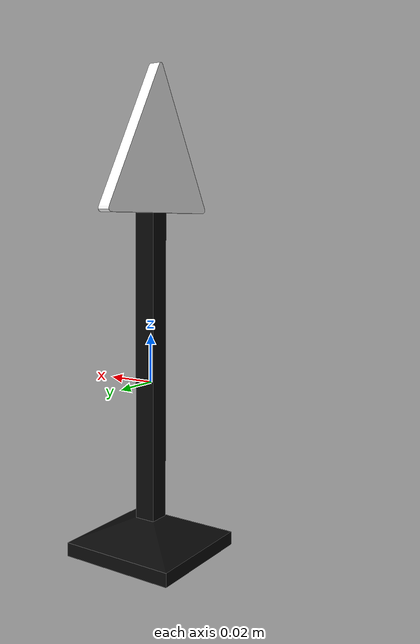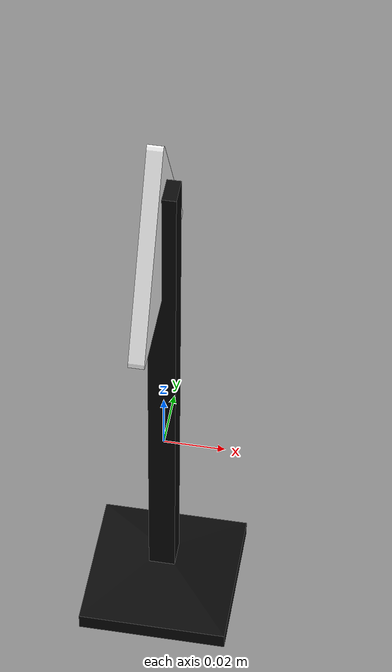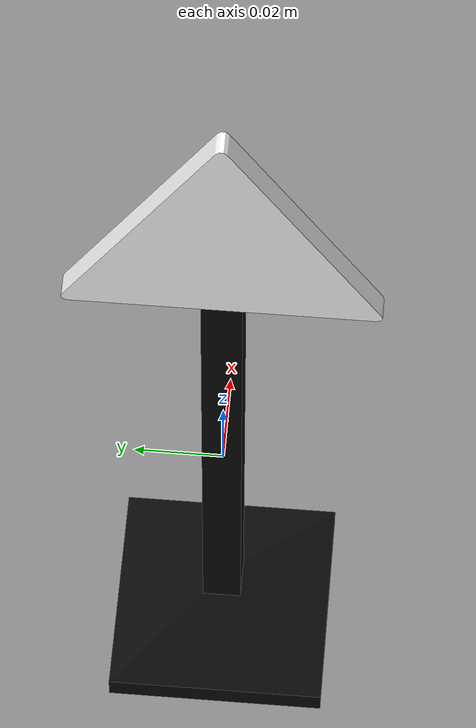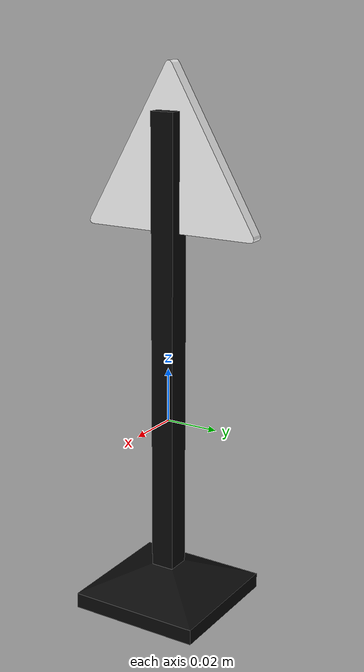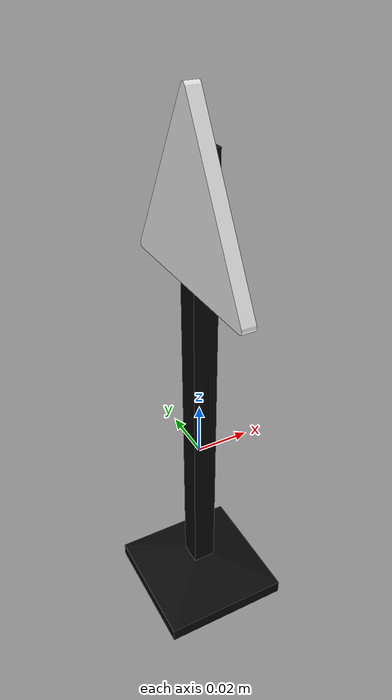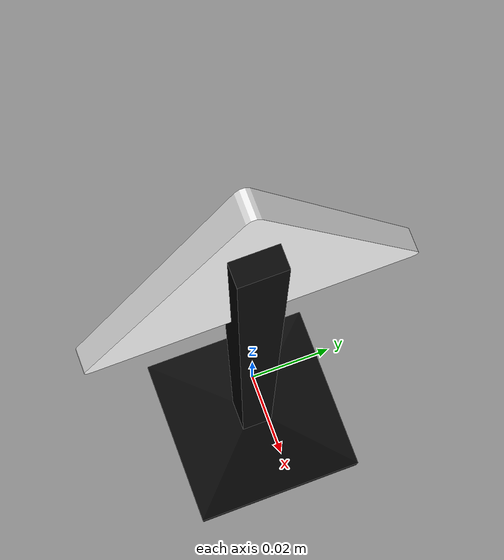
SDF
<?xml version='1.0'?>
<sdf version="1.8">
  <model name='roundabout_sign'>
    <static>true</static>

    <link name='sign_leg'>
      <inertial>
        <mass>0.5</mass>
        <inertia>
          <ixx>0.16</ixx> <ixy>0</ixy> <ixz>0</ixz>
          <iyy>0.16</iyy> <iyz>0</iyz> <izz>0.16</izz>
        </inertia>
      </inertial>
      <pose>0 0 -0.07 0 0 0</pose>
      <visual name='visual'>
        <geometry>
          <mesh>
            <uri>model://subassembly/meshes/sign_leg.dae</uri>
            <scale>1 1 1</scale>
          </mesh>
        </geometry>
      </visual>
      <collision name='collision'>
        <geometry>
          <box>
            <size>0.05 0.05 1.0</size>
          </box>
        </geometry>
      </collision>
    </link>

    <link name='sign_face'>
      <inertial>
        <mass>0.022</mass>
        <inertia>
          <ixx>0.16</ixx> <ixy>0</ixy> <ixz>0</ixz>
          <iyy>0.16</iyy> <iyz>0</iyz> <izz>0.16</izz>
        </inertia>
      </inertial>
      <pose>0 0 0.09 0 0 3.141592</pose>

      <visual name='visual'>
        <geometry>
          <mesh>
            <uri>model://roundabout_sign/meshes/roundabout_sign.dae</uri>
            <scale>1 1 1</scale>
          </mesh>
        </geometry>
        <material>
          <diffuse>1 1 1 1</diffuse>
          <specular>0 0 0 1</specular>
          <pbr>
            <metal>
              <albedo_map>model://roundabout_sign/meshes/roundabout_sign.png</albedo_map>
            </metal>
          </pbr>
        </material>
      </visual>
      <collision name='collision'>
        <geometry>
          <box>
            <size>0.15 0.02 0.15</size>
          </box>
        </geometry>
      </collision>
    </link>

    <joint name='leg_to_face_joint' type='fixed'>
      <parent>sign_leg</parent>
      <child>sign_face</child>
      <pose>0 0 0 0 0 0</pose>
    </joint>
  </model>
</sdf>
